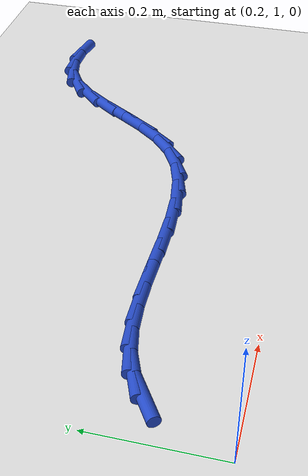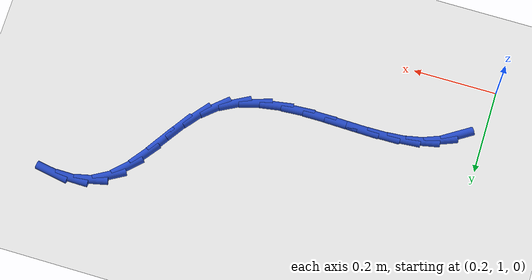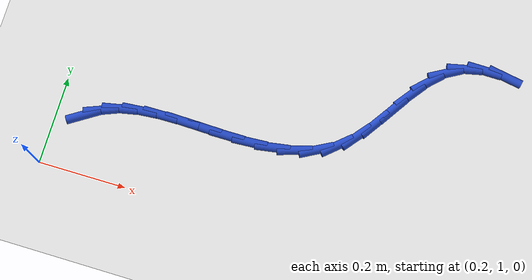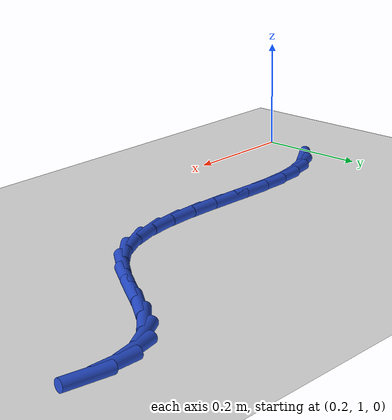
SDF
<sdf version="1.6">
 <world name="default">
  <model name="ground_plane">
   <static>1</static>
   <link name="link">
    <collision name="collision">
     <geometry><plane><normal>0 0 1</normal><size>100 100</size></plane></geometry>
     <surface><friction><ode><mu>100</mu><mu2>50</mu2></ode></friction></surface>
    </collision>
    <visual name="visual">
     <cast_shadows>0</cast_shadows>
     <geometry><plane><normal>0 0 1</normal><size>100 100</size></plane></geometry>
     <material>
      <script><uri>file://media/materials/scripts/gazebo.material</uri><name>Gazebo/WhiteGlow</name></script>
     </material>
    </visual>
   </link>
  </model>
  <model name="line">
   <link name="link_23">
    <pose>0.26188313945581504 1.1288015462533467 0.01 0 1.57 0.5715295678399983</pose>
    <collision name="collision">
     <geometry><cylinder><radius>0.01</radius><length>0.08</length></cylinder></geometry>
    </collision>
    <visual name="visual">
     <material>
      <script><name>Gazebo/Blue</name><uri>file://media/materials/scripts/gazebo.material</uri></script>
     </material>
     <geometry><cylinder><radius>0.01</radius><length>0.08</length></cylinder></geometry>
    </visual>
   </link>
   <link name="link_24">
    <pose>0.2958484504679959 1.1506456107934029 0.01 0 1.57 0.375515979793563</pose>
    <collision name="collision">
     <geometry><cylinder><radius>0.01</radius><length>0.08</length></cylinder></geometry>
    </collision>
    <visual name="visual">
     <material>
      <script><name>Gazebo/Blue</name><uri>file://media/materials/scripts/gazebo.material</uri></script>
     </material>
     <geometry><cylinder><radius>0.01</radius><length>0.08</length></cylinder></geometry>
    </visual>
   </link>
   <link name="link_25">
    <pose>0.33470221534080524 1.1659626439226243 0.01 0 1.57 0.20010661824349893</pose>
    <collision name="collision">
     <geometry><cylinder><radius>0.01</radius><length>0.08</length></cylinder></geometry>
    </collision>
    <visual name="visual">
     <material>
      <script><name>Gazebo/Blue</name><uri>file://media/materials/scripts/gazebo.material</uri></script>
     </material>
     <geometry><cylinder><radius>0.01</radius><length>0.08</length></cylinder></geometry>
    </visual>
   </link>
   <link name="link_26">
    <pose>0.3784246134826065 1.1748304660643687 0.01 0 1.57 0.08088205375445533</pose>
    <collision name="collision">
     <geometry><cylinder><radius>0.01</radius><length>0.08</length></cylinder></geometry>
    </collision>
    <visual name="visual">
     <material>
      <script><name>Gazebo/Blue</name><uri>file://media/materials/scripts/gazebo.material</uri></script>
     </material>
     <geometry><cylinder><radius>0.01</radius><length>0.08</length></cylinder></geometry>
    </visual>
   </link>
   <link name="link_27">
    <pose>0.4260848176880768 1.178693749352107 0.01 0 1.57 0.009631024847016514</pose>
    <collision name="collision">
     <geometry><cylinder><radius>0.01</radius><length>0.08</length></cylinder></geometry>
    </collision>
    <visual name="visual">
     <material>
      <script><name>Gazebo/Blue</name><uri>file://media/materials/scripts/gazebo.material</uri></script>
     </material>
     <geometry><cylinder><radius>0.01</radius><length>0.08</length></cylinder></geometry>
    </visual>
   </link>
   <link name="link_28">
    <pose>0.4766297659005855 1.1791805640560913 0.01 0 1.57 -0.024082108984037016</pose>
    <collision name="collision">
     <geometry><cylinder><radius>0.01</radius><length>0.08</length></cylinder></geometry>
    </collision>
    <visual name="visual">
     <material>
      <script><name>Gazebo/Blue</name><uri>file://media/materials/scripts/gazebo.material</uri></script>
     </material>
     <geometry><cylinder><radius>0.01</radius><length>0.08</length></cylinder></geometry>
    </visual>
   </link>
   <link name="link_29">
    <pose>0.5290063960635013 1.1779189804465757 0.01 0 1.57 -0.025991796539011066</pose>
    <collision name="collision">
     <geometry><cylinder><radius>0.01</radius><length>0.08</length></cylinder></geometry>
    </collision>
    <visual name="visual">
     <material>
      <script><name>Gazebo/Blue</name><uri>file://media/materials/scripts/gazebo.material</uri></script>
     </material>
     <geometry><cylinder><radius>0.01</radius><length>0.08</length></cylinder></geometry>
    </visual>
   </link>
   <link name="link_30">
    <pose>0.5821616461201928 1.176537068793814 0.01 0 1.57 0.0023795085924248655</pose>
    <collision name="collision">
     <geometry><cylinder><radius>0.01</radius><length>0.08</length></cylinder></geometry>
    </collision>
    <visual name="visual">
     <material>
      <script><name>Gazebo/Blue</name><uri>file://media/materials/scripts/gazebo.material</uri></script>
     </material>
     <geometry><cylinder><radius>0.01</radius><length>0.08</length></cylinder></geometry>
    </visual>
   </link>
   <link name="link_31">
    <pose>0.6350424540140299 1.1766628993680586 0.01 0 1.57 0.06318317934950977</pose>
    <collision name="collision">
     <geometry><cylinder><radius>0.01</radius><length>0.08</length></cylinder></geometry>
    </collision>
    <visual name="visual">
     <material>
      <script><name>Gazebo/Blue</name><uri>file://media/materials/scripts/gazebo.material</uri></script>
     </material>
     <geometry><cylinder><radius>0.01</radius><length>0.08</length></cylinder></geometry>
    </visual>
   </link>
   <link name="link_32">
    <pose>0.6865957576883807 1.1799245424395637 0.01 0 1.57 0.1617844196556809</pose>
    <collision name="collision">
     <geometry><cylinder><radius>0.01</radius><length>0.08</length></cylinder></geometry>
    </collision>
    <visual name="visual">
     <material>
      <script><name>Gazebo/Blue</name><uri>file://media/materials/scripts/gazebo.material</uri></script>
     </material>
     <geometry><cylinder><radius>0.01</radius><length>0.08</length></cylinder></geometry>
    </visual>
   </link>
   <link name="link_33">
    <pose>0.7357684950866145 1.1879500682785822 0.01 0 1.57 0.30535293684550313</pose>
    <collision name="collision">
     <geometry><cylinder><radius>0.01</radius><length>0.08</length></cylinder></geometry>
    </collision>
    <visual name="visual">
     <material>
      <script><name>Gazebo/Blue</name><uri>file://media/materials/scripts/gazebo.material</uri></script>
     </material>
     <geometry><cylinder><radius>0.01</radius><length>0.08</length></cylinder></geometry>
    </visual>
   </link>
   <link name="link_34">
    <pose>0.7815076041520999 1.2023675471553674 0.01 0 1.57 0.4981536799402887</pose>
    <collision name="collision">
     <geometry><cylinder><radius>0.01</radius><length>0.08</length></cylinder></geometry>
    </collision>
    <visual name="visual">
     <material>
      <script><name>Gazebo/Blue</name><uri>file://media/materials/scripts/gazebo.material</uri></script>
     </material>
     <geometry><cylinder><radius>0.01</radius><length>0.08</length></cylinder></geometry>
    </visual>
   </link>
   <link name="link_35">
    <pose>0.822760022828206 1.2248050493401732 0.01 0 1.57 0.7242155486025778</pose>
    <collision name="collision">
     <geometry><cylinder><radius>0.01</radius><length>0.08</length></cylinder></geometry>
    </collision>
    <visual name="visual">
     <material>
      <script><name>Gazebo/Blue</name><uri>file://media/materials/scripts/gazebo.material</uri></script>
     </material>
     <geometry><cylinder><radius>0.01</radius><length>0.08</length></cylinder></geometry>
    </visual>
   </link>
   <link name="link_36">
    <pose>0.8586592164833728 1.2565598237515534 0.01 0 1.57 0.8943701556065982</pose>
    <collision name="collision">
     <geometry><cylinder><radius>0.01</radius><length>0.08</length></cylinder></geometry>
    </collision>
    <visual name="visual">
     <material>
      <script><name>Gazebo/Blue</name><uri>file://media/materials/scripts/gazebo.material</uri></script>
     </material>
     <geometry><cylinder><radius>0.01</radius><length>0.08</length></cylinder></geometry>
    </visual>
   </link>
   <link name="link_37">
    <pose>0.8901264666788101 1.295758283870552 0.01 0 1.57 0.9782559270354504</pose>
    <collision name="collision">
     <geometry><cylinder><radius>0.01</radius><length>0.08</length></cylinder></geometry>
    </collision>
    <visual name="visual">
     <material>
      <script><name>Gazebo/Blue</name><uri>file://media/materials/scripts/gazebo.material</uri></script>
     </material>
     <geometry><cylinder><radius>0.01</radius><length>0.08</length></cylinder></geometry>
    </visual>
   </link>
   <link name="link_38">
    <pose>0.9190782250101316 1.33876182928909 0.01 0 1.57 0.9893014821292205</pose>
    <collision name="collision">
     <geometry><cylinder><radius>0.01</radius><length>0.08</length></cylinder></geometry>
    </collision>
    <visual name="visual">
     <material>
      <script><name>Gazebo/Blue</name><uri>file://media/materials/scripts/gazebo.material</uri></script>
     </material>
     <geometry><cylinder><radius>0.01</radius><length>0.08</length></cylinder></geometry>
    </visual>
   </link>
   <link name="link_39">
    <pose>0.9474416768162027 1.3819128224443675 0.01 0 1.57 0.9277518231914533</pose>
    <collision name="collision">
     <geometry><cylinder><radius>0.01</radius><length>0.08</length></cylinder></geometry>
    </collision>
    <visual name="visual">
     <material>
      <script><name>Gazebo/Blue</name><uri>file://media/materials/scripts/gazebo.material</uri></script>
     </material>
     <geometry><cylinder><radius>0.01</radius><length>0.08</length></cylinder></geometry>
    </visual>
   </link>
   <link name="link_40">
    <pose>0.9771440074358878 1.4215536257735848 0.01 0 1.57 0.7778278854162246</pose>
    <collision name="collision">
     <geometry><cylinder><radius>0.01</radius><length>0.08</length></cylinder></geometry>
    </collision>
    <visual name="visual">
     <material>
      <script><name>Gazebo/Blue</name><uri>file://media/materials/scripts/gazebo.material</uri></script>
     </material>
     <geometry><cylinder><radius>0.01</radius><length>0.08</length></cylinder></geometry>
    </visual>
   </link>
   <link name="link_41">
    <pose>1.0101124022080512 1.454026601713942 0.01 0 1.57 0.5176113235397699</pose>
    <collision name="collision">
     <geometry><cylinder><radius>0.01</radius><length>0.08</length></cylinder></geometry>
    </collision>
    <visual name="visual">
     <material>
      <script><name>Gazebo/Blue</name><uri>file://media/materials/scripts/gazebo.material</uri></script>
     </material>
     <geometry><cylinder><radius>0.01</radius><length>0.08</length></cylinder></geometry>
    </visual>
   </link>
   <link name="link_42">
    <pose>1.0482365981585824 1.4757343056589745 0.01 0 1.57 0.21765108100890893</pose>
    <collision name="collision">
     <geometry><cylinder><radius>0.01</radius><length>0.08</length></cylinder></geometry>
    </collision>
    <visual name="visual">
     <material>
      <script><name>Gazebo/Blue</name><uri>file://media/materials/scripts/gazebo.material</uri></script>
     </material>
     <geometry><cylinder><radius>0.01</radius><length>0.08</length></cylinder></geometry>
    </visual>
   </link>
   <link name="link_43">
    <pose>1.091960079651133 1.4854039430713437 0.01 0 1.57 -0.013159235292218796</pose>
    <collision name="collision">
     <geometry><cylinder><radius>0.01</radius><length>0.08</length></cylinder></geometry>
    </collision>
    <visual name="visual">
     <material>
      <script><name>Gazebo/Blue</name><uri>file://media/materials/scripts/gazebo.material</uri></script>
     </material>
     <geometry><cylinder><radius>0.01</radius><length>0.08</length></cylinder></geometry>
    </visual>
   </link>
   <link name="link_44">
    <pose>1.1398531042069149 1.4847736711114907 0.01 0 1.57 -0.17617859453486232</pose>
    <collision name="collision">
     <geometry><cylinder><radius>0.01</radius><length>0.08</length></cylinder></geometry>
    </collision>
    <visual name="visual">
     <material>
      <script><name>Gazebo/Blue</name><uri>file://media/materials/scripts/gazebo.material</uri></script>
     </material>
     <geometry><cylinder><radius>0.01</radius><length>0.08</length></cylinder></geometry>
    </visual>
   </link>
  </model>
 </world>
</sdf>
